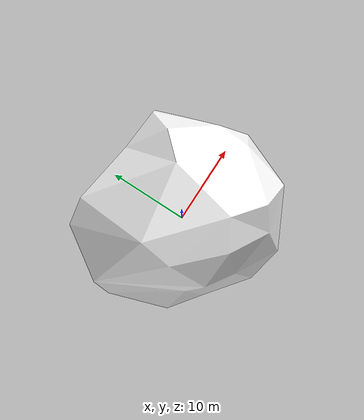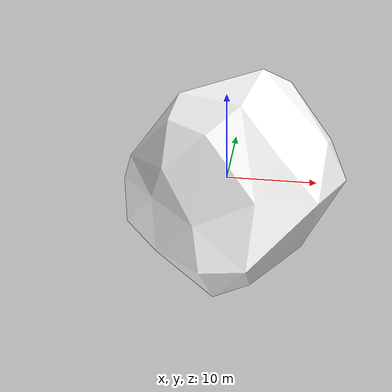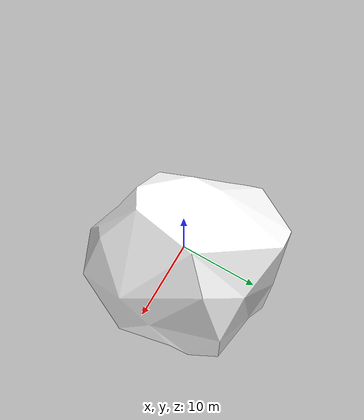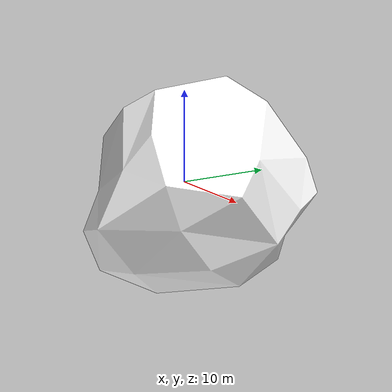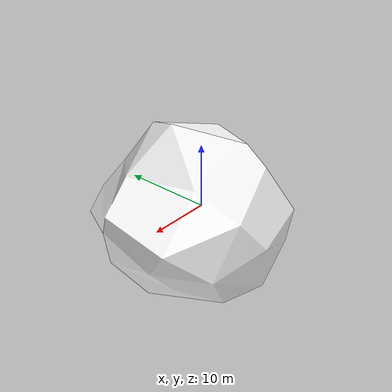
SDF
<?xml version="1.0" ?>
<sdf version="1.6">
    <model name="falling_rock3">
        <link name="base_link">
            <inertial>
                <pose>0.018197 0.019887 -0.018097 0 0 0</pose>
                <mass>195.308</mass>
                <inertia>
                    <ixx>6.48</ixx>
                    <ixy>0.224</ixy>
                    <ixz>-0.32</ixz>
                    <iyy>6.448</iyy>
                    <iyz>0.094</iyz>
                    <izz>6.604</izz>
                </inertia>
            </inertial>
            <collision name="collision">
                <geometry>
                    <mesh>
                        <scale>40 40 40</scale>
            <uri>meshes/FallingRock03_Collider.dae</uri>
                    </mesh>
                </geometry>
            </collision>
            <visual name="visual">
                <geometry>
                    <mesh>
                        <scale>40 40 40</scale>
            <uri>meshes/FallingRock03.dae</uri>
                    </mesh>
                </geometry>
                <material>
                    <diffuse>1.0 1.0 1.0</diffuse>
                    <specular>1.0 1.0 1.0</specular>
                    <pbr>
                        <metal>
                            <albedo_map>https://fuel.gazebosim.org/1.0/openrobotics/models/falling rock 3/6/files/materials/textures/FallingRocks_Albedo.jpg</albedo_map>
                            <normal_map>https://fuel.gazebosim.org/1.0/openrobotics/models/falling rock 3/6/files/materials/textures/FallingRocks_Normal.jpg</normal_map>
                            <roughness_map>https://fuel.gazebosim.org/1.0/openrobotics/models/falling rock 3/6/files/materials/textures/FallingRocks_Roughness.jpg</roughness_map>
                        </metal>
                    </pbr>
                    <!-- fallback to script if no PBR support-->
                    <script>
                        <uri>https://fuel.gazebosim.org/1.0/openrobotics/models/falling rock 3/6/files/materials/scripts</uri>
                        <uri>https://fuel.gazebosim.org/1.0/openrobotics/models/falling rock 3/6/files/materials/textures</uri>
                        <name>FallingRocks/FallingRocks_Diffuse</name>
                    </script>
                </material>
            </visual>
        </link>
    </model>
</sdf>
